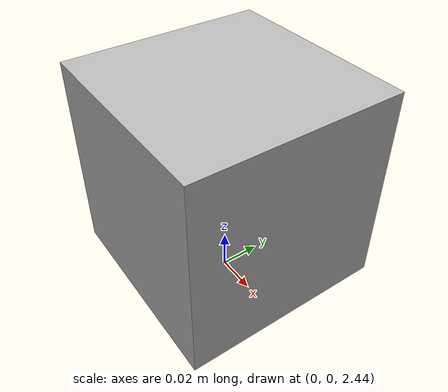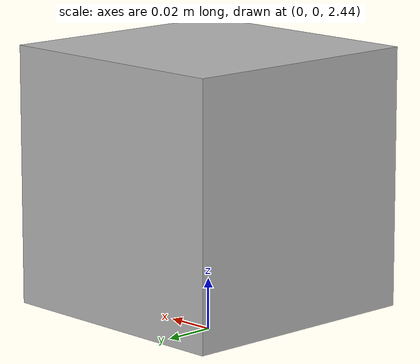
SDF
<?xml version="1.0" ?>
<sdf version="1.4">
  <world name="default">

    <!-- Global light source -->
    <include>
      <uri>model://sun</uri>
    </include>

    <model name="camera_distorted">
      <static>true</static>
      <pose>0.0 0.0 2.5 0.0 1.5707 0.0</pose>
      <link name="camera_link">
        <pose>0 0 0 0 0 0</pose>
        <visual name="camera_visual">
          <geometry>
            <box>
              <size>0.1 0.1 0.1</size>
            </box>
          </geometry>
        </visual>
        <sensor type="camera" name="camera_distorted">
          <update_rate>30.0</update_rate>
          <camera name="head">
            <horizontal_fov>0.927295218</horizontal_fov>
            <image>
              <width>1000</width>
              <height>1000</height>
              <format>R8G8B8</format>
            </image>
            <clip>
              <near>0.02</near>
              <far>300</far>
            </clip>
            <distortion>
              <k1>-0.1</k1>
              <k2>-0.1</k2>
              <p1>0</p1>
              <p2>0</p2>
              <k3>-0.1</k3>
              <center>0.5 0.5</center>
            </distortion>
          </camera>
          <plugin name="camera_controller" filename="libgazebo_ros_new_camera.so">
            <alwaysOn>true</alwaysOn>
            <updateRate>0.0</updateRate>
            <cameraName>camera_distorted</cameraName>
            <imageTopicName>image_raw</imageTopicName>
            <cameraInfoTopicName>camera_info</cameraInfoTopicName>
            <frameName>camera_distorted_link</frameName>
            <hackBaseline>0.07</hackBaseline>
            <distortionK1>-0.1</distortionK1>
            <distortionK2>-0.1</distortionK2>
            <distortionT1>0.0</distortionT1>
            <distortionT2>0.0</distortionT2>
            <distortionK3>-0.1</distortionK3>
            <borderCrop>false</borderCrop>
          </plugin>
        </sensor>
      </link>
    </model>

    <model name="camera_undistorted">
      <static>true</static>
      <pose>0.0 0.0 2.5 0.0 1.5707 0.0</pose>
      <link name="camera_link">
        <pose>0 0 0 0 0 0</pose>
        <visual name="camera_visual">
          <geometry>
            <box>
              <size>0.1 0.1 0.1</size>
            </box>
          </geometry>
        </visual>
        <sensor type="camera" name="camera_undistorted">
          <update_rate>30.0</update_rate>
          <camera name="head">
            <horizontal_fov>0.927295218</horizontal_fov>
            <image>
              <width>1000</width>
              <height>1000</height>
              <format>R8G8B8</format>
            </image>
            <clip>
              <near>0.02</near>
              <far>300</far>
            </clip>
            <distortion>
              <k1>0.0</k1>
              <k2>0.0</k2>
              <p1>0.0</p1>
              <p2>0.0</p2>
              <k3>0.0</k3>
              <center>0.5 0.5</center>
            </distortion>
          </camera>
          <plugin name="camera_controller" filename="libgazebo_ros_new_camera.so">
            <alwaysOn>true</alwaysOn>
            <updateRate>0.0</updateRate>
            <cameraName>camera_undistorted</cameraName>
            <imageTopicName>image_raw</imageTopicName>
            <cameraInfoTopicName>camera_info</cameraInfoTopicName>
            <frameName>camera_undistorted_link</frameName>
            <hackBaseline>0.0</hackBaseline>
            <distortionK1>0.0</distortionK1>
            <distortionK2>0.0</distortionK2>
            <distortionT1>0.0</distortionT1>
            <distortionT2>0.0</distortionT2>
            <distortionK3>0.0</distortionK3>
          </plugin>
        </sensor>
      </link>
    </model>

    <include>
      <uri>model://checkerboard_plane</uri>
    </include>
</world>
</sdf>

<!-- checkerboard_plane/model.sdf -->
<sdf version="1.5">
  <model name="checkerboard_plane">
    <static>true</static>
    <link name="link">
      <collision name="collision">
        <geometry>
          <plane>
            <normal>0 0 1</normal>
            <size>2000 2000</size>
          </plane>
        </geometry>
        <surface>
          <friction>
            <ode>
              <mu>100</mu>
              <mu2>50</mu2>
            </ode>
          </friction>
        </surface>
      </collision>
      <visual name="visual">
        <cast_shadows>false</cast_shadows>
        <geometry>
          <plane>
            <normal>0 0 1</normal>
            <size>2000 2000</size>
          </plane>
        </geometry>
        <material>
          <script>
            <uri>model://checkerboard_plane/materials/scripts</uri>
            <uri>model://checkerboard_plane/materials/textures</uri>
            <name>Checkerboard/Checkerboard</name>
          </script>
        </material>
      </visual>
    </link>
  </model>
</sdf>
